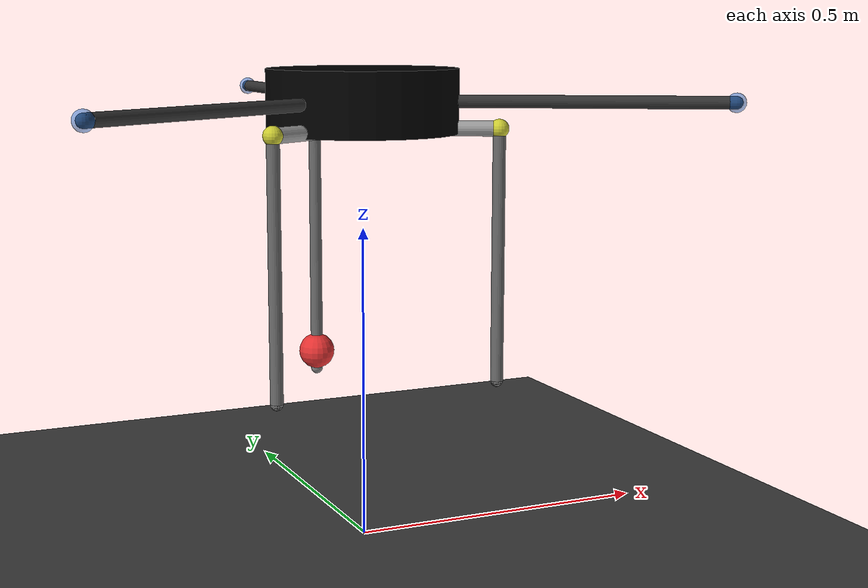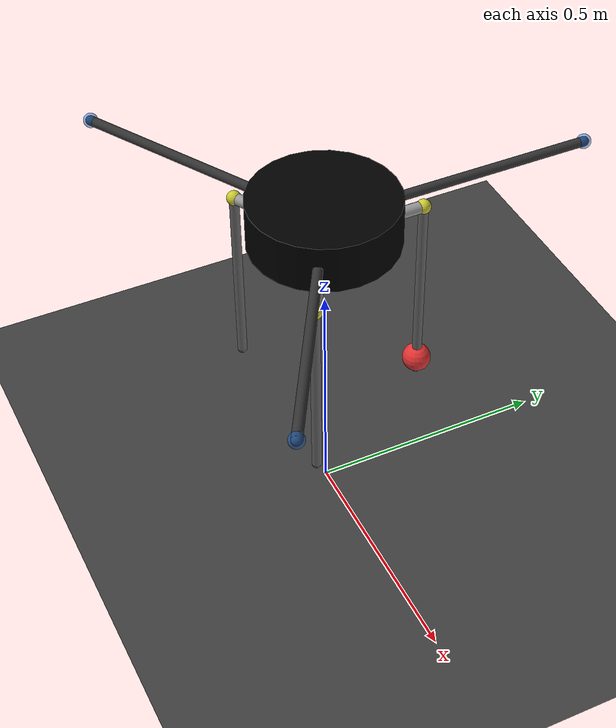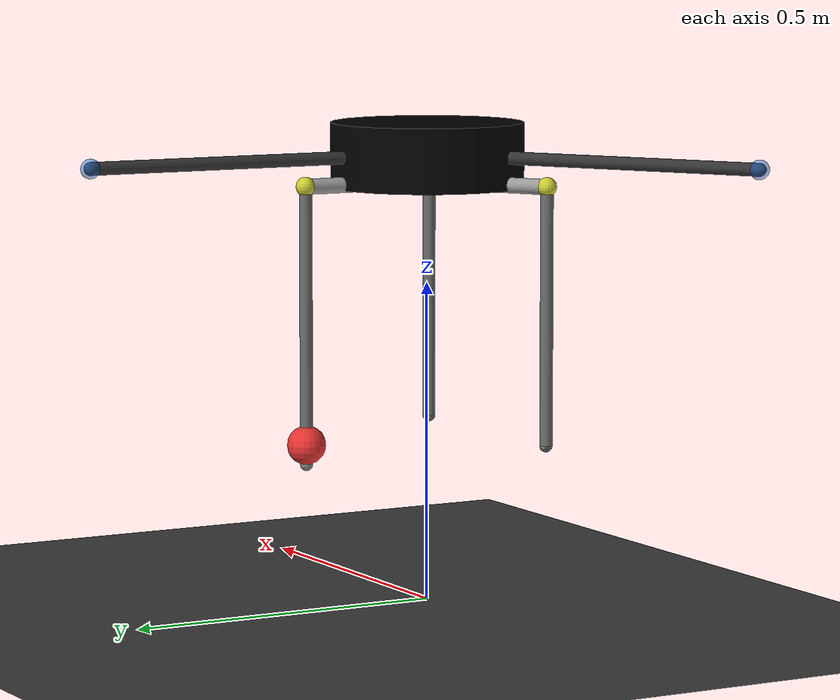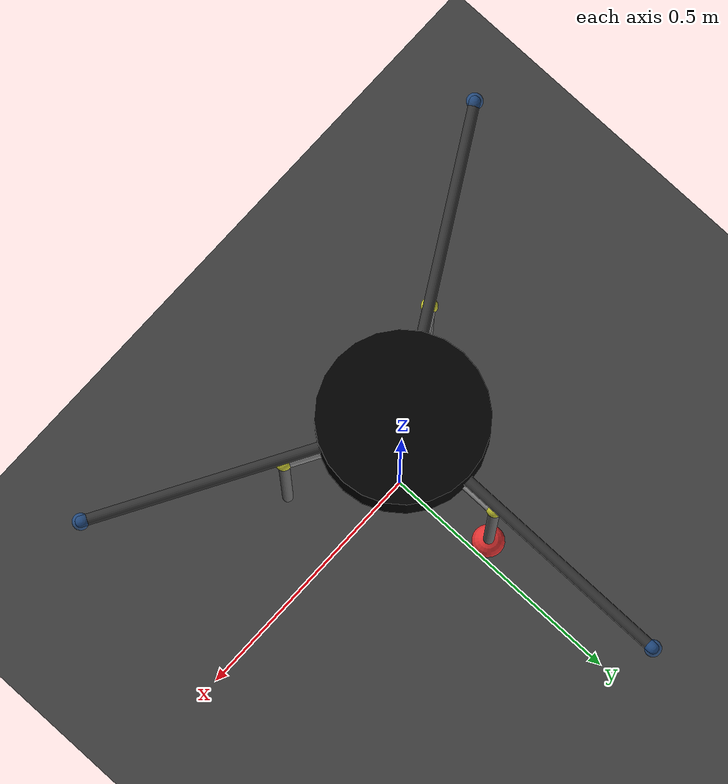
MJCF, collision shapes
<mujoco model="hopper_3rsr_parallel">
  <compiler angle="radian" meshdir="meshes" eulerseq="xyz"/>

  <option timestep="0.001" gravity="0 0 -9.81" integrator="RK4">
    <flag warmstart="enable"/>
  </option>

  <visual>
    <global offwidth="2048" offheight="2048"/>
    <quality shadowsize="4096"/>
  </visual>

  <default>
    <joint armature="0.005" damping="0.1" limited="true"/>
    <geom contype="1" conaffinity="1" friction="0.8 0.005 0.0001"/>
    <motor ctrllimited="true"/>
  </default>

  <asset>
    <!-- Textures -->
    <texture type="skybox" builtin="gradient" rgb1="0.3 0.5 0.7" rgb2="0 0 0" width="512" height="512"/>
    <texture name="plane_tex" type="2d" builtin="checker" rgb1="0.2 0.2 0.2" rgb2="0.3 0.3 0.3" width="512" height="512"/>
    <material name="plane_mat" texture="plane_tex" texrepeat="5 5" reflectance="0.1"/>

    <!-- Materials -->
    <material name="base_mat" rgba="0.1 0.3 0.7 1"/>
    <material name="upper_mat" rgba="0.6 0.6 0.6 1"/>
    <material name="lower_mat" rgba="0.4 0.4 0.4 1"/>
    <material name="foot_mat" rgba="0.9 0.2 0.2 1"/>
    <material name="joint_mat" rgba="0.8 0.8 0.2 1"/>
    <material name="prop_arm_mat" rgba="0.2 0.2 0.2 1"/>
    <material name="prop_disc_mat" rgba="0.1 0.75 0.1 0.6"/>

    <!-- Meshes -->
    <mesh name="base_link_mesh" file="base_link.STL"/>
  </asset>

  <worldbody>
    <!-- Ground plane -->
    <geom name="ground" type="plane" size="10 10 0.1" material="plane_mat"/>

    <!-- Base Body (Floating) -->
    <body name="base_link" pos="0 0 0.7">
      <freejoint name="root"/>

      <!-- IMU site -->
      <site name="imu_site" pos="0 0 0" size="0.01"/>

      <!-- Base inertial (from URDF) -->
      <inertial pos="-0.000332 0.000002 -0.023132" mass="2.50681195566096"
                fullinertia="0.0233667280091328 0.023367930568101 0.0460329566307884
                             2.39896564964331e-05 2.13732387800745e-06 3.38974687864798e-08"/>

      <!-- Base visual -->
      <geom name="base_visual" type="mesh" mesh="base_link_mesh"
            material="base_mat" contype="0" conaffinity="0"/>

      <!-- Base collision -->
      <geom name="base_collision" type="cylinder" size="0.15 0.05" pos="0 0 0"
            rgba="0 0 0 0"/>

      <!-- Propeller arms (visual) -->
      <geom name="prop_arm_1" type="capsule" fromto="0 0 0 0.000317 0.569451 0"
            size="0.01" material="prop_arm_mat" contype="0" conaffinity="0"/>
      <geom name="prop_arm_2" type="capsule" fromto="0 0 0 0.493317 -0.284451 0"
            size="0.01" material="prop_arm_mat" contype="0" conaffinity="0"/>
      <geom name="prop_arm_3" type="capsule" fromto="0 0 0 -0.493634 -0.285 0"
            size="0.01" material="prop_arm_mat" contype="0" conaffinity="0"/>

      <!-- Propeller sites -->
      <site name="prop_site_1" pos="0.000317 0.569451 0" size="0.015" rgba="0.1 0.4 0.8 0.5"/>
      <site name="prop_site_2" pos="0.493317 -0.284451 0" size="0.015" rgba="0.1 0.4 0.8 0.5"/>
      <site name="prop_site_3" pos="-0.493634 -0.285 0" size="0.015" rgba="0.1 0.4 0.8 0.5"/>

      <!-- LIMB 1: θ = 0° (Y+ direction) -->
      <!-- Motor position: (0, r, -offset) where r = 0.02424 -->
      <body name="motor1_link" pos="0 0.02424 -0.0416">
        <!-- Motor joint (revolute around local X axis, which points radially outward) -->
        <!-- For limb 1 at Y+, the hinge axis is along X (perpendicular to Y) -->
        <joint name="motor1_joint" type="hinge" axis="1 0 0"
               range="-1.5 1.5" damping="0.3"/>
        <inertial pos="0 0 0" mass="0.02" diaginertia="1e-5 1e-5 1e-5"/>
        <geom name="motor1_geom" type="sphere" size="0.015" material="joint_mat"/>

        <!-- Upper link 1 (length D = 0.188m, extends in Y-Z plane) -->
        <body name="upper1_link" pos="0 0 0">
          <!-- Upper link extends along Y (radially) and Z (downward) -->
          <!-- At θ=0, it points in +Y and +Z direction -->
          <inertial pos="0 0.094 -0.0" mass="0.05" diaginertia="2e-4 1e-5 2e-4"/>
          <geom name="upper1_geom" type="capsule" fromto="0 0 0 0 0.188 0"
                size="0.012" material="upper_mat"/>

          <!-- Knee 1 (spherical joint - modeled as 3 hinges) -->
          <body name="knee1_link" pos="0 0.188 0">
            <joint name="knee1_x" type="hinge" axis="1 0 0" range="-1.5 1.5" damping="0.05"/>
            <joint name="knee1_y" type="hinge" axis="0 1 0" range="-1.5 1.5" damping="0.05"/>
            <joint name="knee1_z" type="hinge" axis="0 0 1" range="-1.5 1.5" damping="0.05"/>
            <inertial pos="0 0 0" mass="0.01" diaginertia="1e-6 1e-6 1e-6"/>
            <geom name="knee1_geom" type="sphere" size="0.015" material="joint_mat"/>

            <!-- Lower link 1 (length d = 0.398m) + FOOT (primary chain) -->
            <body name="lower1_link" pos="0 0 0">
              <inertial pos="0 0 -0.199" mass="0.10" diaginertia="5e-4 5e-4 1e-5"/>
              <geom name="lower1_geom" type="capsule" fromto="0 0 0 0 0 -0.398"
                    size="0.010" material="lower_mat"/>

              <!-- Foot is directly attached to limb 1 (no separate body with freejoint) -->
              <body name="foot_link" pos="0 0 -0.398">
                <inertial pos="0 0 0" mass="0.008" diaginertia="1e-6 1e-6 1e-6"/>
                <geom name="foot_collision" type="sphere" size="0.03" material="foot_mat"/>
                <site name="foot_site" pos="0 0 -0.03" size="0.01"/>
                <!-- Site for other limbs to connect to -->
                <site name="foot_center" pos="0 0 0" size="0.008" rgba="1 1 0 1"/>
              </body>
            </body>
          </body>
        </body>
      </body>

      <!-- LIMB 2: θ = 120° (rotated 120° around Z) -->
      <!-- Motor position: rotate (0, r, -offset) by 120° -->
      <!-- cos(120°) = -0.5, sin(120°) = 0.866 -->
      <!-- pos = (-r*sin(120°), r*cos(120°), -offset) = (-0.021, -0.012, -0.0416) -->
      <body name="motor2_link" pos="-0.02099 -0.01212 -0.0416" euler="0 0 2.0944">
        <!-- Motor joint - axis perpendicular to radial direction -->
        <joint name="motor2_joint" type="hinge" axis="1 0 0"
               range="-1.5 1.5" damping="0.3"/>
        <inertial pos="0 0 0" mass="0.02" diaginertia="1e-5 1e-5 1e-5"/>
        <geom name="motor2_geom" type="sphere" size="0.015" material="joint_mat"/>

        <!-- Upper link 2 -->
        <body name="upper2_link" pos="0 0 0">
          <inertial pos="0 0.094 0" mass="0.05" diaginertia="2e-4 1e-5 2e-4"/>
          <geom name="upper2_geom" type="capsule" fromto="0 0 0 0 0.188 0"
                size="0.012" material="upper_mat"/>

          <!-- Knee 2 -->
          <body name="knee2_link" pos="0 0.188 0">
            <joint name="knee2_x" type="hinge" axis="1 0 0" range="-1.5 1.5" damping="0.05"/>
            <joint name="knee2_y" type="hinge" axis="0 1 0" range="-1.5 1.5" damping="0.05"/>
            <joint name="knee2_z" type="hinge" axis="0 0 1" range="-1.5 1.5" damping="0.05"/>
            <inertial pos="0 0 0" mass="0.01" diaginertia="1e-6 1e-6 1e-6"/>
            <geom name="knee2_geom" type="sphere" size="0.015" material="joint_mat"/>

            <!-- Lower link 2 -->
            <body name="lower2_link" pos="0 0 0">
              <inertial pos="0 0 -0.199" mass="0.10" diaginertia="5e-4 5e-4 1e-5"/>
              <geom name="lower2_geom" type="capsule" fromto="0 0 0 0 0 -0.398"
                    size="0.010" material="lower_mat"/>

              <!-- Foot attachment point for limb 2 -->
              <site name="foot_attach_2" pos="0 0 -0.398" size="0.01"/>
            </body>
          </body>
        </body>
      </body>

      <!-- LIMB 3: θ = 240° (rotated 240° around Z) -->
      <!-- cos(240°) = -0.5, sin(240°) = -0.866 -->
      <!-- pos = (-r*sin(240°), r*cos(240°), -offset) = (0.021, -0.012, -0.0416) -->
      <body name="motor3_link" pos="0.02099 -0.01212 -0.0416" euler="0 0 4.1888">
        <!-- Motor joint -->
        <joint name="motor3_joint" type="hinge" axis="1 0 0"
               range="-1.5 1.5" damping="0.3"/>
        <inertial pos="0 0 0" mass="0.02" diaginertia="1e-5 1e-5 1e-5"/>
        <geom name="motor3_geom" type="sphere" size="0.015" material="joint_mat"/>

        <!-- Upper link 3 -->
        <body name="upper3_link" pos="0 0 0">
          <inertial pos="0 0.094 0" mass="0.05" diaginertia="2e-4 1e-5 2e-4"/>
          <geom name="upper3_geom" type="capsule" fromto="0 0 0 0 0.188 0"
                size="0.012" material="upper_mat"/>

          <!-- Knee 3 -->
          <body name="knee3_link" pos="0 0.188 0">
            <joint name="knee3_x" type="hinge" axis="1 0 0" range="-1.5 1.5" damping="0.05"/>
            <joint name="knee3_y" type="hinge" axis="0 1 0" range="-1.5 1.5" damping="0.05"/>
            <joint name="knee3_z" type="hinge" axis="0 0 1" range="-1.5 1.5" damping="0.05"/>
            <inertial pos="0 0 0" mass="0.01" diaginertia="1e-6 1e-6 1e-6"/>
            <geom name="knee3_geom" type="sphere" size="0.015" material="joint_mat"/>

            <!-- Lower link 3 -->
            <body name="lower3_link" pos="0 0 0">
              <inertial pos="0 0 -0.199" mass="0.10" diaginertia="5e-4 5e-4 1e-5"/>
              <geom name="lower3_geom" type="capsule" fromto="0 0 0 0 0 -0.398"
                    size="0.010" material="lower_mat"/>

              <!-- Foot attachment point for limb 3 -->
              <site name="foot_attach_3" pos="0 0 -0.398" size="0.01"/>
            </body>
          </body>
        </body>
      </body>

    </body>
    <!-- End of base_link -->

    <!-- Note: Foot is attached to limb 1 as the "primary" chain -->
    <!-- Limbs 2 and 3 are connected to it via equality constraints -->

  </worldbody>

  <!-- Equality Constraints: Close the kinematic loop -->
  <!-- Limb 1 has the foot attached directly (primary chain) -->
  <!-- Limbs 2 and 3 connect to the foot via constraints -->
  <equality>
    <!-- Constraint 1: Limb 2 endpoint connects to foot -->
    <connect name="loop_close_2" body1="lower2_link" body2="foot_link"
             anchor="0 0 -0.398" solref="0.002 1" solimp="0.95 0.99 0.001"/>

    <!-- Constraint 2: Limb 3 endpoint connects to foot -->
    <connect name="loop_close_3" body1="lower3_link" body2="foot_link"
             anchor="0 0 -0.398" solref="0.002 1" solimp="0.95 0.99 0.001"/>
  </equality>

  <!-- Actuators: 3 motor joints -->
  <actuator>
    <motor name="motor1" joint="motor1_joint" gear="1" ctrlrange="-15 15"/>
    <motor name="motor2" joint="motor2_joint" gear="1" ctrlrange="-15 15"/>
    <motor name="motor3" joint="motor3_joint" gear="1" ctrlrange="-15 15"/>
  </actuator>

  <!-- Sensors -->
  <sensor>
    <!-- IMU on base -->
    <accelerometer name="imu_accel" site="imu_site"/>
    <gyro name="imu_gyro" site="imu_site"/>
    <framequat name="imu_quat" objtype="body" objname="base_link"/>

    <!-- Motor positions -->
    <jointpos name="motor1_pos" joint="motor1_joint"/>
    <jointpos name="motor2_pos" joint="motor2_joint"/>
    <jointpos name="motor3_pos" joint="motor3_joint"/>

    <!-- Motor velocities -->
    <jointvel name="motor1_vel" joint="motor1_joint"/>
    <jointvel name="motor2_vel" joint="motor2_joint"/>
    <jointvel name="motor3_vel" joint="motor3_joint"/>

    <!-- Foot contact -->
    <touch name="foot_touch" site="foot_site"/>
  </sensor>

  <!-- Keyframe: Initial configuration with leg length ~0.464m -->
  <!-- Motor angles: -0.4167 rad (-23.88°) for symmetric configuration -->
  <keyframe>
    <key name="home"
         qpos="0 0 0.55 1 0 0 0
               -0.4167 0 0 0
               -0.4167 0 0 0
               -0.4167 0 0 0"/>
  </keyframe>

</mujoco>
